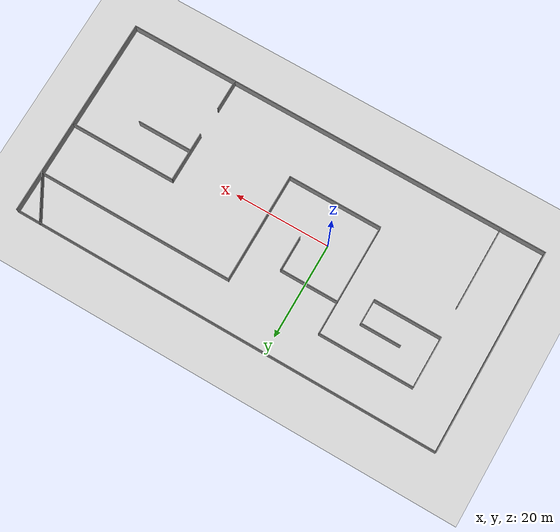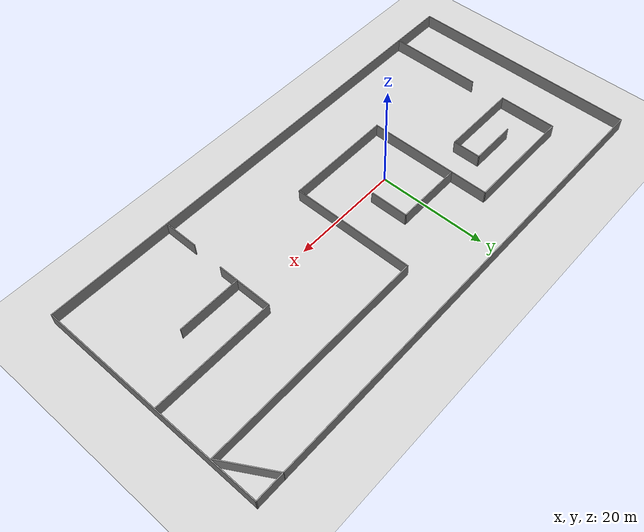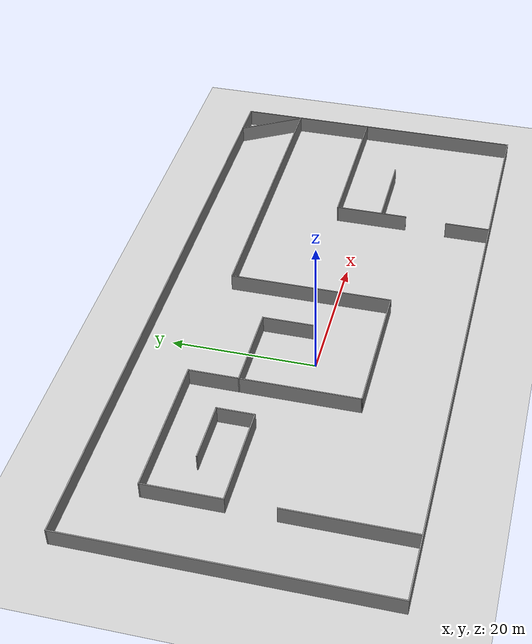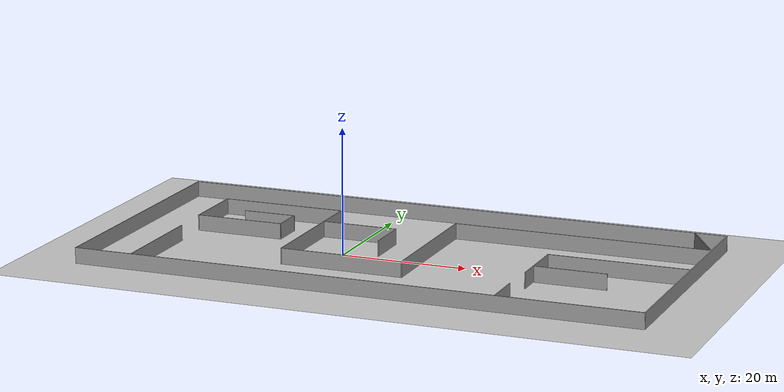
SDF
<sdf version="1.6">
 <world name="default">
  <light name="sun" type="directional">
   <pose>0 0 10 0 -0 0</pose>
   <diffuse>0.8 0.8 0.8 1</diffuse>
   <specular>0.2 0.2 0.2 1</specular>
   <attenuation>
    <range>1000</range>
    <constant>0.9</constant>
    <linear>0.01</linear>
    <quadratic>0.001</quadratic>
   </attenuation>
   <direction>-0.5 0.1 -0.9</direction>
  </light>
  <model name="ground_plane">
   <static>1</static>
   <link name="link">
    <collision name="collision">
     <geometry><plane><normal>0 0 1</normal><size>100 100</size></plane></geometry>
     <surface><friction><ode><mu>100</mu><mu2>50</mu2></ode></friction></surface>
    </collision>
    <visual name="visual">
     <cast_shadows>0</cast_shadows>
     <geometry><plane><normal>0 0 1</normal><size>100 100</size></plane></geometry>
     <material>
      <script><uri>file://media/materials/scripts/gazebo.material</uri><name>Gazebo/Grey</name></script>
     </material>
    </visual>
   </link>
  </model>
  <gravity>0 0 -9.8</gravity>
  <magnetic_field>6e-06 2.3e-05 -4.2e-05</magnetic_field>
  <atmosphere type="adiabatic"/>
  <physics name="default_physics" default="0" type="ode">
   <max_step_size>0.001</max_step_size>
   <real_time_factor>1</real_time_factor>
   <real_time_update_rate>1000</real_time_update_rate>
  </physics>
  <scene><ambient>0.4 0.4 0.4 1</ambient><background>0.7 0.7 0.7 1</background><shadows>1</shadows></scene>
  <audio><device>default</device></audio>
  <spherical_coordinates>
   <surface_model>EARTH_WGS84</surface_model>
   <latitude_deg>0</latitude_deg>
   <longitude_deg>0</longitude_deg>
   <elevation>0</elevation>
   <heading_deg>0</heading_deg>
  </spherical_coordinates>
  <model name="ExploringOffice">
   <pose>9.0288 2.39572 0 0 -0 0</pose>
   <link name="Wall_1">
    <collision name="Wall_1_Collision">
     <geometry><box><size>90 0.15 2.5</size></box></geometry>
     <pose>0 0 1.25 0 -0 0</pose>
    </collision>
    <visual name="Wall_1_Visual">
     <pose>0 0 1.25 0 -0 0</pose>
     <geometry><box><size>90 0.15 2.5</size></box></geometry>
     <material>
      <script><uri>file://media/materials/scripts/gazebo.material</uri><name>Gazebo/Grey</name></script>
      <ambient>1 1 1 1</ambient>
     </material>
     <meta><layer>0</layer></meta>
    </visual>
    <pose>0 -21.3181 0 0 -0 0</pose>
   </link>
   <link name="Wall_10">
    <collision name="Wall_10_Collision">
     <geometry><box><size>23 0.15 2.5</size></box></geometry>
     <pose>0 0 1.25 0 -0 0</pose>
    </collision>
    <visual name="Wall_10_Visual">
     <pose>0 0 1.25 0 -0 0</pose>
     <geometry><box><size>23 0.15 2.5</size></box></geometry>
     <material>
      <script><uri>file://media/materials/scripts/gazebo.material</uri><name>Gazebo/Grey</name></script>
      <ambient>1 1 1 1</ambient>
     </material>
     <meta><layer>0</layer></meta>
    </visual>
    <pose>3.68597 1.33528 0 0 -0 1.5708</pose>
   </link>
   <link name="Wall_11">
    <collision name="Wall_11_Collision">
     <geometry><box><size>41.25 0.15 2.5</size></box></geometry>
     <pose>0 0 1.25 0 -0 0</pose>
    </collision>
    <visual name="Wall_11_Visual">
     <pose>0 0 1.25 0 -0 0</pose>
     <geometry><box><size>41.25 0.15 2.5</size></box></geometry>
     <material>
      <script><uri>file://media/materials/scripts/gazebo.material</uri><name>Gazebo/Grey</name></script>
      <ambient>1 1 1 1</ambient>
     </material>
     <meta><layer>0</layer></meta>
    </visual>
    <pose>24.236 12.7603 0 0 -0 0</pose>
   </link>
   <link name="Wall_12">
    <collision name="Wall_12_Collision">
     <geometry><box><size>10 0.15 2.5</size></box></geometry>
     <pose>0 0 1.25 0 -0 0</pose>
    </collision>
    <visual name="Wall_12_Visual">
     <pose>0 0 1.25 0 -0 0</pose>
     <geometry><box><size>10 0.15 2.5</size></box></geometry>
     <material>
      <script><uri>file://media/materials/scripts/gazebo.material</uri><name>Gazebo/Grey</name></script>
      <ambient>1 1 1 1</ambient>
     </material>
     <meta><layer>0</layer></meta>
    </visual>
    <pose>42.3235 17.0255 0 0 -0 2.0944</pose>
   </link>
   <link name="Wall_14">
    <collision name="Wall_14_Collision">
     <geometry><box><size>7 0.15 2.5</size></box></geometry>
     <pose>0 0 1.25 0 -0 0</pose>
    </collision>
    <visual name="Wall_14_Visual">
     <pose>0 0 1.25 0 -0 0</pose>
     <geometry><box><size>7 0.15 2.5</size></box></geometry>
     <material>
      <script><uri>file://media/materials/scripts/gazebo.material</uri><name>Gazebo/Grey</name></script>
      <ambient>1 1 1 1</ambient>
     </material>
     <meta><layer>0</layer></meta>
    </visual>
    <pose>-15.914 9.68528 0 0 -0 1.5708</pose>
   </link>
   <link name="Wall_15">
    <collision name="Wall_15_Collision">
     <geometry><box><size>20 0.15 2.5</size></box></geometry>
     <pose>0 0 1.25 0 -0 0</pose>
    </collision>
    <visual name="Wall_15_Visual">
     <pose>0 0 1.25 0 -0 0</pose>
     <geometry><box><size>20 0.15 2.5</size></box></geometry>
     <material>
      <script><uri>file://media/materials/scripts/gazebo.material</uri><name>Gazebo/Grey</name></script>
      <ambient>1 1 1 1</ambient>
     </material>
     <meta><layer>0</layer></meta>
    </visual>
    <pose>-25.839 13.1103 0 0 -0 3.14159</pose>
   </link>
   <link name="Wall_16">
    <collision name="Wall_16_Collision">
     <geometry><box><size>10.75 0.15 2.5</size></box></geometry>
     <pose>0 0 1.25 0 -0 0</pose>
    </collision>
    <visual name="Wall_16_Visual">
     <pose>0 0 1.25 0 -0 0</pose>
     <geometry><box><size>10.75 0.15 2.5</size></box></geometry>
     <material>
      <script><uri>file://media/materials/scripts/gazebo.material</uri><name>Gazebo/Grey</name></script>
      <ambient>1 1 1 1</ambient>
     </material>
     <meta><layer>0</layer></meta>
    </visual>
    <pose>-35.764 7.81028 0 0 -0 -1.5708</pose>
   </link>
   <link name="Wall_17">
    <collision name="Wall_17_Collision">
     <geometry><box><size>14.25 0.15 2.5</size></box></geometry>
     <pose>0 0 1.25 0 -0 0</pose>
    </collision>
    <visual name="Wall_17_Visual">
     <pose>0 0 1.25 0 -0 0</pose>
     <geometry><box><size>14.25 0.15 2.5</size></box></geometry>
     <material>
      <script><uri>file://media/materials/scripts/gazebo.material</uri><name>Gazebo/Grey</name></script>
      <ambient>1 1 1 1</ambient>
     </material>
     <meta><layer>0</layer></meta>
    </visual>
    <pose>-28.714 2.51028 0 0 -0 0</pose>
   </link>
   <link name="Wall_18">
    <collision name="Wall_18_Collision">
     <geometry><box><size>5.25 0.15 2.5</size></box></geometry>
     <pose>0 0 1.25 0 -0 0</pose>
    </collision>
    <visual name="Wall_18_Visual">
     <pose>0 0 1.25 0 -0 0</pose>
     <geometry><box><size>5.25 0.15 2.5</size></box></geometry>
     <material>
      <script><uri>file://media/materials/scripts/gazebo.material</uri><name>Gazebo/Grey</name></script>
      <ambient>1 1 1 1</ambient>
     </material>
     <meta><layer>0</layer></meta>
    </visual>
    <pose>-21.664 5.06028 0 0 -0 1.5708</pose>
   </link>
   <link name="Wall_19">
    <collision name="Wall_19_Collision">
     <geometry><box><size>8.5 0.15 2.5</size></box></geometry>
     <pose>0 0 1.25 0 -0 0</pose>
    </collision>
    <visual name="Wall_19_Visual">
     <pose>0 0 1.25 0 -0 0</pose>
     <geometry><box><size>8.5 0.15 2.5</size></box></geometry>
     <material>
      <script><uri>file://media/materials/scripts/gazebo.material</uri><name>Gazebo/Grey</name></script>
      <ambient>1 1 1 1</ambient>
     </material>
     <meta><layer>0</layer></meta>
    </visual>
    <pose>-25.839 7.61028 0 0 -0 3.14159</pose>
   </link>
   <link name="Wall_2">
    <collision name="Wall_2_Collision">
     <geometry><box><size>42.75 0.15 2.5</size></box></geometry>
     <pose>0 0 1.25 0 -0 0</pose>
    </collision>
    <visual name="Wall_2_Visual">
     <pose>0 0 1.25 0 -0 0</pose>
     <geometry><box><size>42.75 0.15 2.5</size></box></geometry>
     <material>
      <script><uri>file://media/materials/scripts/gazebo.material</uri><name>Gazebo/Grey</name></script>
      <ambient>1 1 1 1</ambient>
     </material>
     <meta><layer>0</layer></meta>
    </visual>
    <pose>44.925 -0.018077 0 0 -0 1.5708</pose>
   </link>
   <link name="Wall_21">
    <collision name="Wall_21_Collision">
     <geometry><box><size>17.25 0.15 2.5</size></box></geometry>
     <pose>0 0 1.25 0 -0 0</pose>
    </collision>
    <visual name="Wall_21_Visual">
     <pose>0 0 1.25 0 -0 0</pose>
     <geometry><box><size>17.25 0.15 2.5</size></box></geometry>
     <material>
      <script><uri>file://media/materials/scripts/gazebo.material</uri><name>Gazebo/Grey</name></script>
      <ambient>1 1 1 1</ambient>
     </material>
     <meta><layer>0</layer></meta>
    </visual>
    <pose>-35.6189 -12.6073 0 0 -0 -1.5708</pose>
   </link>
   <link name="Wall_23">
    <collision name="Wall_23_Collision">
     <geometry><box><size>22.25 0.15 2.5</size></box></geometry>
     <pose>0 0 1.25 0 -0 0</pose>
    </collision>
    <visual name="Wall_23_Visual">
     <pose>0 0 1.25 0 -0 0</pose>
     <geometry><box><size>22.25 0.15 2.5</size></box></geometry>
     <material>
      <script><uri>file://media/materials/scripts/gazebo.material</uri><name>Gazebo/Grey</name></script>
      <ambient>1 1 1 1</ambient>
     </material>
     <meta><layer>0</layer></meta>
    </visual>
    <pose>33.7472 1.61211 0 0 -0 3.14159</pose>
   </link>
   <link name="Wall_24">
    <collision name="Wall_24_Collision">
     <geometry><box><size>10.5 0.15 2.5</size></box></geometry>
     <pose>0 0 1.25 0 -0 0</pose>
    </collision>
    <visual name="Wall_24_Visual">
     <pose>0 0 1.25 0 -0 0</pose>
     <geometry><box><size>10.5 0.15 2.5</size></box></geometry>
     <material>
      <script><uri>file://media/materials/scripts/gazebo.material</uri><name>Gazebo/Grey</name></script>
      <ambient>1 1 1 1</ambient>
     </material>
     <meta><layer>0</layer></meta>
    </visual>
    <pose>22.6972 -3.56289 0 0 -0 -1.5708</pose>
   </link>
   <link name="Wall_26">
    <collision name="Wall_26_Collision">
     <geometry><box><size>6.5 0.15 2.5</size></box></geometry>
     <pose>0 0 1.25 0 -0 0</pose>
    </collision>
    <visual name="Wall_26_Visual">
     <pose>0 0 1.25 0 -0 0</pose>
     <geometry><box><size>6.5 0.15 2.5</size></box></geometry>
     <material>
      <script><uri>file://media/materials/scripts/gazebo.material</uri><name>Gazebo/Grey</name></script>
      <ambient>1 1 1 1</ambient>
     </material>
     <meta><layer>0</layer></meta>
    </visual>
    <pose>22.4533 -18.0717 0 0 -0 -1.5708</pose>
   </link>
   <link name="Wall_28">
    <collision name="Wall_28_Collision">
     <geometry><box><size>11.5 0.15 2.5</size></box></geometry>
     <pose>0 0 1.25 0 -0 0</pose>
    </collision>
    <visual name="Wall_28_Visual">
     <pose>0 0 1.25 0 -0 0</pose>
     <geometry><box><size>11.5 0.15 2.5</size></box></geometry>
     <material>
      <script><uri>file://media/materials/scripts/gazebo.material</uri><name>Gazebo/Grey</name></script>
      <ambient>1 1 1 1</ambient>
     </material>
     <meta><layer>0</layer></meta>
    </visual>
    <pose>28.413 -5.07682 0 0 -0 0</pose>
   </link>
   <link name="Wall_3">
    <collision name="Wall_3_Collision">
     <geometry><box><size>90 0.15 2.5</size></box></geometry>
     <pose>0 0 1.25 0 -0 0</pose>
    </collision>
    <visual name="Wall_3_Visual">
     <pose>0 0 1.25 0 -0 0</pose>
     <geometry><box><size>90 0.15 2.5</size></box></geometry>
     <material>
      <script><uri>file://media/materials/scripts/gazebo.material</uri><name>Gazebo/Grey</name></script>
      <ambient>1 1 1 1</ambient>
     </material>
     <meta><layer>0</layer></meta>
    </visual>
    <pose>0 21.2819 0 0 -0 3.14159</pose>
   </link>
   <link name="Wall_4">
    <collision name="Wall_4_Collision">
     <geometry><box><size>42.75 0.15 2.5</size></box></geometry>
     <pose>0 0 1.25 0 -0 0</pose>
    </collision>
    <visual name="Wall_4_Visual">
     <pose>0 0 1.25 0 -0 0</pose>
     <geometry><box><size>42.75 0.15 2.5</size></box></geometry>
     <material>
      <script><uri>file://media/materials/scripts/gazebo.material</uri><name>Gazebo/Grey</name></script>
      <ambient>1 1 1 1</ambient>
     </material>
     <meta><layer>0</layer></meta>
    </visual>
    <pose>-44.925 -0.018077 0 0 -0 -1.5708</pose>
   </link>
   <link name="Wall_6">
    <collision name="Wall_6_Collision">
     <geometry><box><size>7.25 0.15 2.5</size></box></geometry>
     <pose>0 0 1.25 0 -0 0</pose>
    </collision>
    <visual name="Wall_6_Visual">
     <pose>0 0 1.25 0 -0 0</pose>
     <geometry><box><size>7.25 0.15 2.5</size></box></geometry>
     <material>
      <script><uri>file://media/materials/scripts/gazebo.material</uri><name>Gazebo/Grey</name></script>
      <ambient>1 1 1 1</ambient>
     </material>
     <meta><layer>0</layer></meta>
    </visual>
    <pose>-3.81403 2.71028 0 0 -0 1.5708</pose>
   </link>
   <link name="Wall_7">
    <collision name="Wall_7_Collision">
     <geometry><box><size>12.25 0.15 2.5</size></box></geometry>
     <pose>0 0 1.25 0 -0 0</pose>
    </collision>
    <visual name="Wall_7_Visual">
     <pose>0 0 1.25 0 -0 0</pose>
     <geometry><box><size>12.25 0.15 2.5</size></box></geometry>
     <material>
      <script><uri>file://media/materials/scripts/gazebo.material</uri><name>Gazebo/Grey</name></script>
      <ambient>1 1 1 1</ambient>
     </material>
     <meta><layer>0</layer></meta>
    </visual>
    <pose>-9.86403 6.26028 0 0 -0 3.14159</pose>
   </link>
   <link name="Wall_8">
    <collision name="Wall_8_Collision">
     <geometry><box><size>16.5 0.15 2.5</size></box></geometry>
     <pose>0 0 1.25 0 -0 0</pose>
    </collision>
    <visual name="Wall_8_Visual">
     <pose>0 0 1.25 0 -0 0</pose>
     <geometry><box><size>16.5 0.15 2.5</size></box></geometry>
     <material>
      <script><uri>file://media/materials/scripts/gazebo.material</uri><name>Gazebo/Grey</name></script>
      <ambient>1 1 1 1</ambient>
     </material>
     <meta><layer>0</layer></meta>
    </visual>
    <pose>-15.914 -1.91472 0 0 -0 -1.5708</pose>
   </link>
   <link name="Wall_9">
    <collision name="Wall_9_Collision">
     <geometry><box><size>19.75 0.15 2.5</size></box></geometry>
     <pose>0 0 1.25 0 -0 0</pose>
    </collision>
    <visual name="Wall_9_Visual">
     <pose>0 0 1.25 0 -0 0</pose>
     <geometry><box><size>19.75 0.15 2.5</size></box></geometry>
     <material>
      <script><uri>file://media/materials/scripts/gazebo.material</uri><name>Gazebo/Grey</name></script>
      <ambient>1 1 1 1</ambient>
     </material>
     <meta><layer>0</layer></meta>
    </visual>
    <pose>-6.11403 -10.0897 0 0 -0 0</pose>
   </link>
   <static>1</static>
  </model>
 </world>
</sdf>
